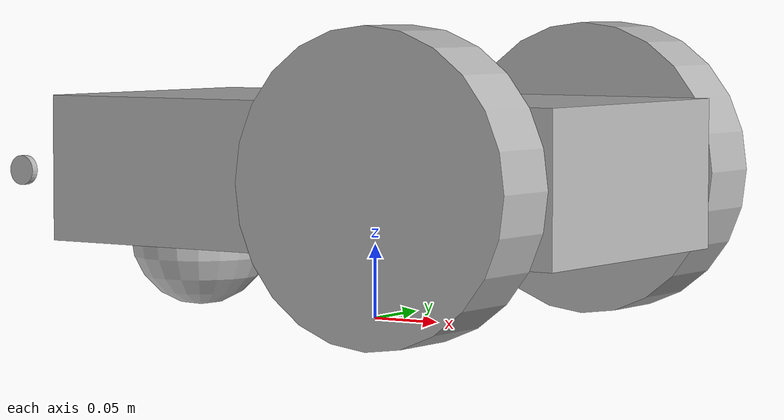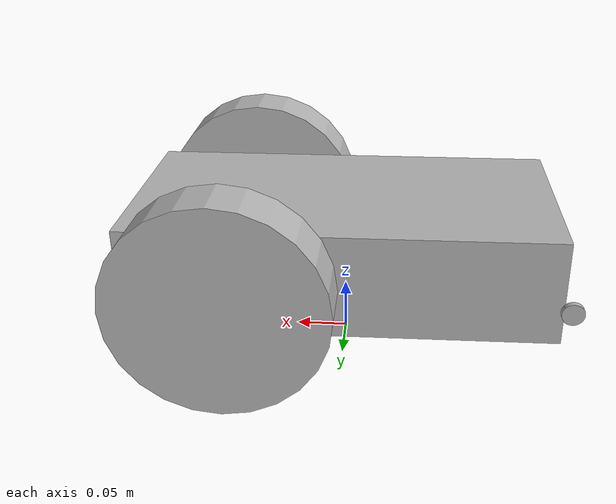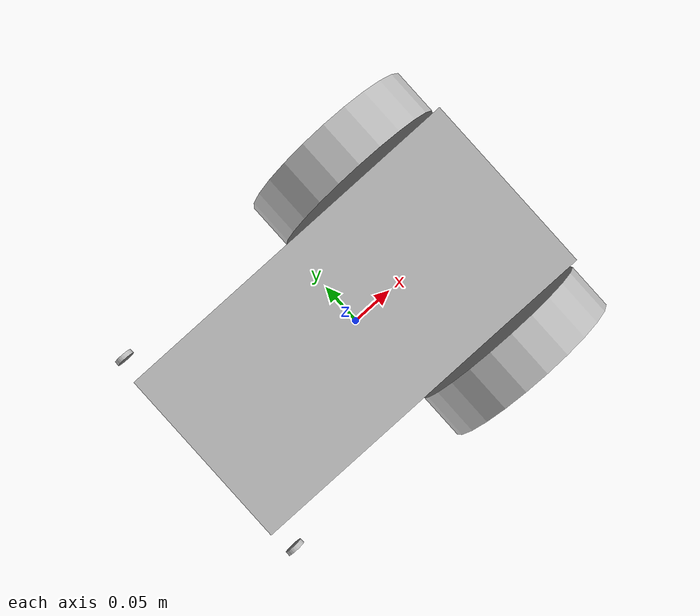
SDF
<?xml version='1.0'?>
    <sdf version='1.4'>
      <model name="my_robot">

        <static>false</static>

        <link name='chassis'>
          <pose>0 0 .1 0 0 0</pose>
          <collision name='collision'>
            <geometry>
              <box>
                <size>.4 .2 .1</size>
              </box>
            </geometry>
          </collision>

          <visual name='visual'>
            <geometry>
              <box>
                <size>.4 .2 .1</size>
              </box>
            </geometry>
          </visual>

	  <inertial>
  <inertia>
    <ixx>0.1</ixx>
    <ixy>0</ixy>
    <ixz>0</ixz>
    <iyy>0.1</iyy>
    <iyz>0</iyz>
    <izz>0.1</izz>
  </inertia>
  <mass>0.1</mass>
</inertial>

          <collision name='caster_collision'>
            <pose>-0.15 0 -0.05 0 0 0</pose>
            <geometry>
              <sphere>
              <radius>.05</radius>
            </sphere>
          </geometry>

          <surface>
            <friction>
              <ode>
                <mu>0</mu>
                <mu2>0</mu2>
                <slip1>1.0</slip1>
                <slip2>1.0</slip2>
              </ode>
            </friction>
          </surface>
        </collision>

        <visual name='caster_visual'>
          <pose>-0.15 0 -0.05 0 0 0</pose>
          <geometry>
            <sphere>
              <radius>.05</radius>
            </sphere>
          </geometry>
        </visual>
      </link>
      <link name="left_wheel">
        <pose>0.1 0.13 0.1 0 1.5707 1.5707</pose>
        <collision name="collision">
          <geometry>
            <cylinder>
              <radius>.1</radius>
              <length>.05</length>
            </cylinder>
          </geometry>
        </collision>
        <visual name="visual">
          <geometry>
            <cylinder>
              <radius>.1</radius>
              <length>.05</length>
            </cylinder>
          </geometry>
        </visual>
          <inertial>
  <inertia>
    <ixx>0.001</ixx>
    <ixy>0</ixy>
    <ixz>0</ixz>
    <iyy>0.001</iyy>
    <iyz>0</iyz>
    <izz>0.001</izz>
  </inertia>
  <mass>0.001</mass>
</inertial>

	</link>

      <link name="right_wheel">
        <pose>0.1 -0.13 0.1 0 1.5707 1.5707</pose>
        <collision name="collision">
          <geometry>
            <cylinder>
              <radius>.1</radius>
              <length>.05</length>
            </cylinder>
          </geometry>
        </collision>
        <visual name="visual">
          <geometry>
            <cylinder>
              <radius>.1</radius>
              <length>.05</length>
            </cylinder>
          </geometry>
        </visual>
          <inertial>
  <inertia>
    <ixx>0.001</ixx>
    <ixy>0</ixy>
    <ixz>0</ixz>
    <iyy>0.001</iyy>
    <iyz>0</iyz>
    <izz>0.001</izz>
  </inertia>
  <mass>0.001</mass>
</inertial>

</link>

      <joint type="revolute" name="left_wheel_hinge">
        <pose>0 0 -0.03 0 0 0</pose>
        <child>left_wheel</child>
        <parent>chassis</parent>
        <axis>
          <xyz>0 1 0</xyz>
        </axis>
      </joint>

      <joint type="revolute" name="right_wheel_hinge">
        <pose>0 0 0.03 0 0 0</pose>
        <child>right_wheel</child>
        <parent>chassis</parent>
        <axis>
          <xyz>0 1 0</xyz>
        </axis>
      </joint>

      <link name="front_left">
	      <pose>-0.2 0.13 0.1 0 1.5707 1.5707</pose>
		        <collision name="collision">
          <geometry>
            <cylinder>
              <radius>.01</radius>
              <length>.005</length>
            </cylinder>
          </geometry>
        </collision>
        <visual name="visual">
          <geometry>
            <cylinder>
              <radius>.01</radius>
              <length>.005</length>
            </cylinder>
          </geometry>
        </visual>
          <inertial>
  <inertia>
    <ixx>0.001</ixx>
    <ixy>0</ixy>
    <ixz>0</ixz>
    <iyy>0.001</iyy>
    <iyz>0</iyz>
    <izz>0.001</izz>
  </inertia>
  <mass>0.001</mass>
</inertial>

	</link>

      <link name="front_right">
              <pose>-0.2 -0.13 0.1 0 1.5707 1.5707</pose>
        <collision name="collision">
          <geometry>
            <cylinder>
              <radius>.01</radius>
              <length>.005</length>
            </cylinder>
          </geometry>
        </collision>
        <visual name="visual">
          <geometry>
            <cylinder>
              <radius>.01</radius>
              <length>.005</length>
            </cylinder>
          </geometry>
        </visual>
          <inertial>
  <inertia>
    <ixx>0.001</ixx>
    <ixy>0</ixy>
    <ixz>0</ixz>
    <iyy>0.001</iyy>
    <iyz>0</iyz>
    <izz>0.001</izz>
  </inertia>
  <mass>0.001</mass>
</inertial>

	</link>

	<joint type="fixed" name="left_front_fix">
        <pose>0 0 -0.03 0 0 0</pose>
        <child>front_left</child>
        <parent>chassis</parent>
        <axis>
          <xyz>0 1 0</xyz>
        </axis>
      </joint>

      <joint type="fixed" name="right_front_fix">
        <pose>0 0 -0.03 0 0 0</pose>
        <child>front_right</child>
        <parent>chassis</parent>
        <axis>
          <xyz>0 1 0</xyz>
        </axis>
      </joint>

	</model>
    </sdf>
